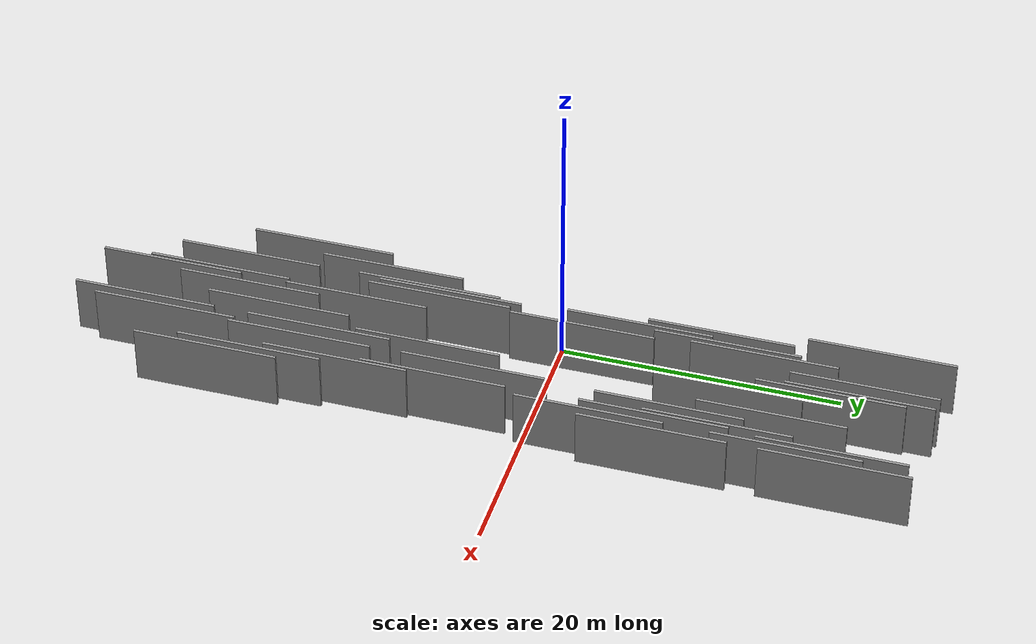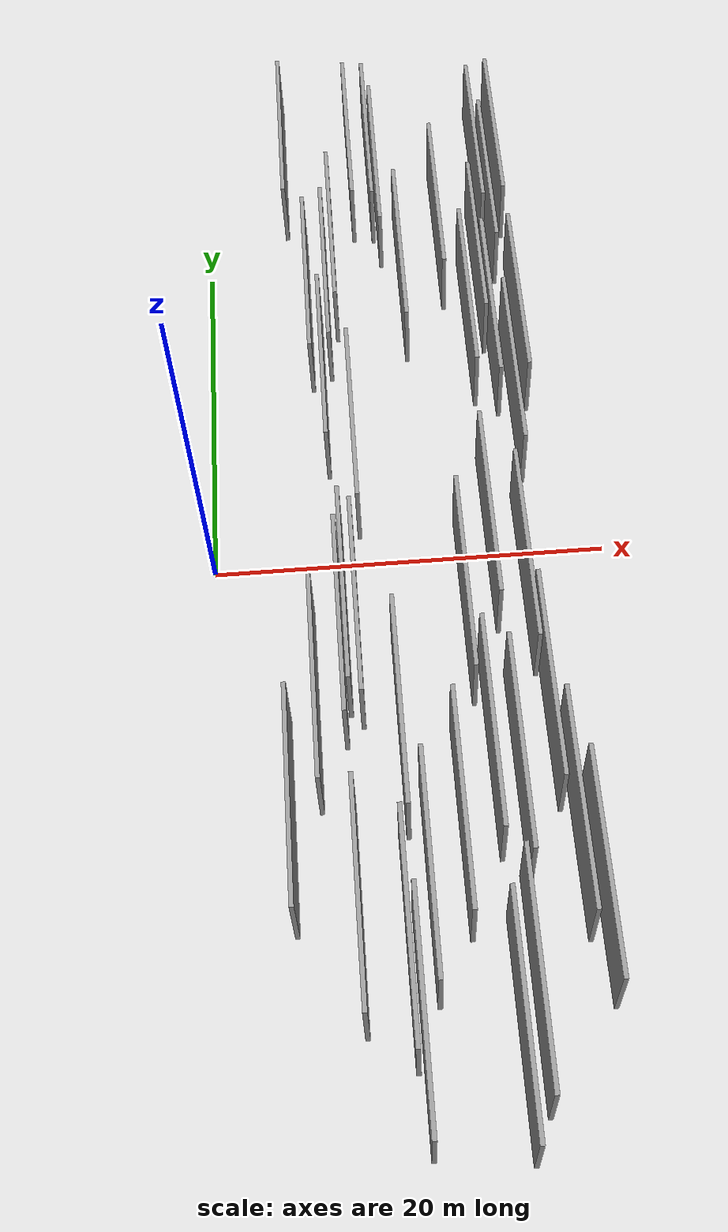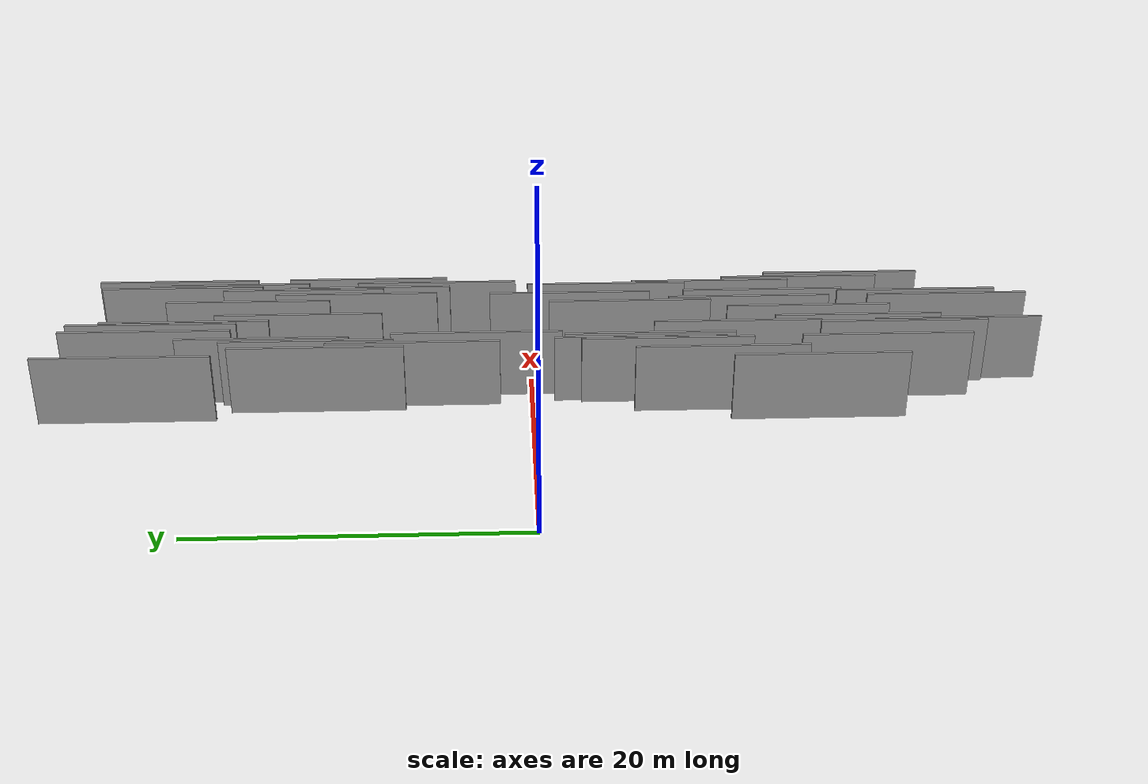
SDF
<sdf version="1.6">
 <world name="default">
  <scene>
   <sky><clouds><speed>12</speed></clouds></sky>
   <ambient>0.4 0.4 0.4 1</ambient>
   <background>0.7 0.7 0.7 1</background>
   <shadows>1</shadows>
  </scene>
  <gravity>0 0 -9.8066</gravity>
  <magnetic_field>6e-06 2.3e-05 -4.2e-05</magnetic_field>
  <physics default="0" name="default_physics" type="ode">
   <ode>
    <solver>
     <type>quick</type>
     <iters>10</iters>
     <sor>1.0</sor>
     <use_dynamic_moi_rescaling>0</use_dynamic_moi_rescaling>
    </solver>
    <constraints>
     <cfm>0</cfm>
     <erp>0.2</erp>
     <contact_max_correcting_vel>100</contact_max_correcting_vel>
     <contact_surface_layer>0.001</contact_surface_layer>
    </constraints>
   </ode>
   <max_step_size>0.004</max_step_size>
   <real_time_factor>1</real_time_factor>
   <real_time_update_rate>250</real_time_update_rate>
  </physics>
  <light name="sun" type="directional">
   <pose>0 0 10 0 0 0</pose>
   <diffuse>0.8 0.8 0.8 1</diffuse>
   <specular>0.2 0.2 0.2 1</specular>
   <attenuation>
    <range>1000</range>
    <constant>0.9</constant>
    <linear>0.01</linear>
    <quadratic>0.001</quadratic>
   </attenuation>
   <direction>-0.5 0.1 -0.9</direction>
  </light>
  <model name="grey_wall_1">
   <static>1</static>
   <pose>11.0375 -16.7799 5.0 0.000000 0.000000 1.570796</pose>
   <link name="link">
    <pose>0 0 2.00 0 0 0</pose>
    <collision name="collision"><geometry><box><size>10.00 0.2 4.00</size></box></geometry></collision>
    <visual name="visual">
     <cast_shadows>0</cast_shadows>
     <geometry><box><size>10.00 0.2 4.00</size></box></geometry>
     <material>
      <script>
       <uri>model://grey_wall/materials/scripts</uri>
       <uri>model://grey_wall/materials/textures</uri>
       <name>vrc/grey_wall</name>
      </script>
     </material>
    </visual>
   </link>
  </model>
  <model name="grey_wall_2">
   <static>1</static>
   <pose>8.7312 -12.0784 5.0 0.000000 0.000000 1.570796</pose>
   <link name="link">
    <pose>0 0 2.00 0 0 0</pose>
    <collision name="collision"><geometry><box><size>10.00 0.2 4.00</size></box></geometry></collision>
    <visual name="visual">
     <cast_shadows>0</cast_shadows>
     <geometry><box><size>10.00 0.2 4.00</size></box></geometry>
     <material>
      <script>
       <uri>model://grey_wall/materials/scripts</uri>
       <uri>model://grey_wall/materials/textures</uri>
       <name>vrc/grey_wall</name>
      </script>
     </material>
    </visual>
   </link>
  </model>
  <model name="grey_wall_3">
   <static>1</static>
   <pose>14.6772 14.4117 5.0 0.000000 0.000000 1.570796</pose>
   <link name="link">
    <pose>0 0 2.00 0 0 0</pose>
    <collision name="collision"><geometry><box><size>10.00 0.2 4.00</size></box></geometry></collision>
    <visual name="visual">
     <cast_shadows>0</cast_shadows>
     <geometry><box><size>10.00 0.2 4.00</size></box></geometry>
     <material>
      <script>
       <uri>model://grey_wall/materials/scripts</uri>
       <uri>model://grey_wall/materials/textures</uri>
       <name>vrc/grey_wall</name>
      </script>
     </material>
    </visual>
   </link>
  </model>
  <model name="grey_wall_4">
   <static>1</static>
   <pose>15.1227 -4.6517 5.0 0.000000 0.000000 1.570796</pose>
   <link name="link">
    <pose>0 0 2.00 0 0 0</pose>
    <collision name="collision"><geometry><box><size>10.00 0.2 4.00</size></box></geometry></collision>
    <visual name="visual">
     <cast_shadows>0</cast_shadows>
     <geometry><box><size>10.00 0.2 4.00</size></box></geometry>
     <material>
      <script>
       <uri>model://grey_wall/materials/scripts</uri>
       <uri>model://grey_wall/materials/textures</uri>
       <name>vrc/grey_wall</name>
      </script>
     </material>
    </visual>
   </link>
  </model>
  <model name="grey_wall_5">
   <static>1</static>
   <pose>13.3952 -24.0836 5.0 0.000000 0.000000 1.570796</pose>
   <link name="link">
    <pose>0 0 2.00 0 0 0</pose>
    <collision name="collision"><geometry><box><size>10.00 0.2 4.00</size></box></geometry></collision>
    <visual name="visual">
     <cast_shadows>0</cast_shadows>
     <geometry><box><size>10.00 0.2 4.00</size></box></geometry>
     <material>
      <script>
       <uri>model://grey_wall/materials/scripts</uri>
       <uri>model://grey_wall/materials/textures</uri>
       <name>vrc/grey_wall</name>
      </script>
     </material>
    </visual>
   </link>
  </model>
  <model name="grey_wall_6">
   <static>1</static>
   <pose>16.4184 10.4827 5.0 0.000000 0.000000 1.570796</pose>
   <link name="link">
    <pose>0 0 2.00 0 0 0</pose>
    <collision name="collision"><geometry><box><size>10.00 0.2 4.00</size></box></geometry></collision>
    <visual name="visual">
     <cast_shadows>0</cast_shadows>
     <geometry><box><size>10.00 0.2 4.00</size></box></geometry>
     <material>
      <script>
       <uri>model://grey_wall/materials/scripts</uri>
       <uri>model://grey_wall/materials/textures</uri>
       <name>vrc/grey_wall</name>
      </script>
     </material>
    </visual>
   </link>
  </model>
  <model name="grey_wall_7">
   <static>1</static>
   <pose>6.6404 13.1950 5.0 0.000000 0.000000 1.570796</pose>
   <link name="link">
    <pose>0 0 2.00 0 0 0</pose>
    <collision name="collision"><geometry><box><size>10.00 0.2 4.00</size></box></geometry></collision>
    <visual name="visual">
     <cast_shadows>0</cast_shadows>
     <geometry><box><size>10.00 0.2 4.00</size></box></geometry>
     <material>
      <script>
       <uri>model://grey_wall/materials/scripts</uri>
       <uri>model://grey_wall/materials/textures</uri>
       <name>vrc/grey_wall</name>
      </script>
     </material>
    </visual>
   </link>
  </model>
  <model name="grey_wall_8">
   <static>1</static>
   <pose>9.7007 20.7970 5.0 0.000000 0.000000 1.570796</pose>
   <link name="link">
    <pose>0 0 2.00 0 0 0</pose>
    <collision name="collision"><geometry><box><size>10.00 0.2 4.00</size></box></geometry></collision>
    <visual name="visual">
     <cast_shadows>0</cast_shadows>
     <geometry><box><size>10.00 0.2 4.00</size></box></geometry>
     <material>
      <script>
       <uri>model://grey_wall/materials/scripts</uri>
       <uri>model://grey_wall/materials/textures</uri>
       <name>vrc/grey_wall</name>
      </script>
     </material>
    </visual>
   </link>
  </model>
  <model name="grey_wall_9">
   <static>1</static>
   <pose>7.5157 3.4173 5.0 0.000000 0.000000 1.570796</pose>
   <link name="link">
    <pose>0 0 2.00 0 0 0</pose>
    <collision name="collision"><geometry><box><size>10.00 0.2 4.00</size></box></geometry></collision>
    <visual name="visual">
     <cast_shadows>0</cast_shadows>
     <geometry><box><size>10.00 0.2 4.00</size></box></geometry>
     <material>
      <script>
       <uri>model://grey_wall/materials/scripts</uri>
       <uri>model://grey_wall/materials/textures</uri>
       <name>vrc/grey_wall</name>
      </script>
     </material>
    </visual>
   </link>
  </model>
  <model name="grey_wall_10">
   <static>1</static>
   <pose>6.4419 -20.4686 5.0 0.000000 0.000000 1.570796</pose>
   <link name="link">
    <pose>0 0 2.00 0 0 0</pose>
    <collision name="collision"><geometry><box><size>10.00 0.2 4.00</size></box></geometry></collision>
    <visual name="visual">
     <cast_shadows>0</cast_shadows>
     <geometry><box><size>10.00 0.2 4.00</size></box></geometry>
     <material>
      <script>
       <uri>model://grey_wall/materials/scripts</uri>
       <uri>model://grey_wall/materials/textures</uri>
       <name>vrc/grey_wall</name>
      </script>
     </material>
    </visual>
   </link>
  </model>
  <model name="grey_wall_11">
   <static>1</static>
   <pose>6.3266 -7.6343 5.0 0.000000 0.000000 1.570796</pose>
   <link name="link">
    <pose>0 0 2.00 0 0 0</pose>
    <collision name="collision"><geometry><box><size>10.00 0.2 4.00</size></box></geometry></collision>
    <visual name="visual">
     <cast_shadows>0</cast_shadows>
     <geometry><box><size>10.00 0.2 4.00</size></box></geometry>
     <material>
      <script>
       <uri>model://grey_wall/materials/scripts</uri>
       <uri>model://grey_wall/materials/textures</uri>
       <name>vrc/grey_wall</name>
      </script>
     </material>
    </visual>
   </link>
  </model>
  <model name="grey_wall_12">
   <static>1</static>
   <pose>12.6332 -25.8149 5.0 0.000000 0.000000 1.570796</pose>
   <link name="link">
    <pose>0 0 2.00 0 0 0</pose>
    <collision name="collision"><geometry><box><size>10.00 0.2 4.00</size></box></geometry></collision>
    <visual name="visual">
     <cast_shadows>0</cast_shadows>
     <geometry><box><size>10.00 0.2 4.00</size></box></geometry>
     <material>
      <script>
       <uri>model://grey_wall/materials/scripts</uri>
       <uri>model://grey_wall/materials/textures</uri>
       <name>vrc/grey_wall</name>
      </script>
     </material>
    </visual>
   </link>
  </model>
  <model name="grey_wall_13">
   <static>1</static>
   <pose>12.6423 -13.3942 5.0 0.000000 0.000000 1.570796</pose>
   <link name="link">
    <pose>0 0 2.00 0 0 0</pose>
    <collision name="collision"><geometry><box><size>10.00 0.2 4.00</size></box></geometry></collision>
    <visual name="visual">
     <cast_shadows>0</cast_shadows>
     <geometry><box><size>10.00 0.2 4.00</size></box></geometry>
     <material>
      <script>
       <uri>model://grey_wall/materials/scripts</uri>
       <uri>model://grey_wall/materials/textures</uri>
       <name>vrc/grey_wall</name>
      </script>
     </material>
    </visual>
   </link>
  </model>
  <model name="grey_wall_14">
   <static>1</static>
   <pose>9.4470 -19.4507 5.0 0.000000 0.000000 1.570796</pose>
   <link name="link">
    <pose>0 0 2.00 0 0 0</pose>
    <collision name="collision"><geometry><box><size>10.00 0.2 4.00</size></box></geometry></collision>
    <visual name="visual">
     <cast_shadows>0</cast_shadows>
     <geometry><box><size>10.00 0.2 4.00</size></box></geometry>
     <material>
      <script>
       <uri>model://grey_wall/materials/scripts</uri>
       <uri>model://grey_wall/materials/textures</uri>
       <name>vrc/grey_wall</name>
      </script>
     </material>
    </visual>
   </link>
  </model>
  <model name="grey_wall_15">
   <static>1</static>
   <pose>6.5810 -6.0678 5.0 0.000000 0.000000 1.570796</pose>
   <link name="link">
    <pose>0 0 2.00 0 0 0</pose>
    <collision name="collision"><geometry><box><size>10.00 0.2 4.00</size></box></geometry></collision>
    <visual name="visual">
     <cast_shadows>0</cast_shadows>
     <geometry><box><size>10.00 0.2 4.00</size></box></geometry>
     <material>
      <script>
       <uri>model://grey_wall/materials/scripts</uri>
       <uri>model://grey_wall/materials/textures</uri>
       <name>vrc/grey_wall</name>
      </script>
     </material>
    </visual>
   </link>
  </model>
  <model name="grey_wall_16">
   <static>1</static>
   <pose>4.6924 23.2341 5.0 0.000000 0.000000 1.570796</pose>
   <link name="link">
    <pose>0 0 2.00 0 0 0</pose>
    <collision name="collision"><geometry><box><size>10.00 0.2 4.00</size></box></geometry></collision>
    <visual name="visual">
     <cast_shadows>0</cast_shadows>
     <geometry><box><size>10.00 0.2 4.00</size></box></geometry>
     <material>
      <script>
       <uri>model://grey_wall/materials/scripts</uri>
       <uri>model://grey_wall/materials/textures</uri>
       <name>vrc/grey_wall</name>
      </script>
     </material>
    </visual>
   </link>
  </model>
  <model name="grey_wall_17">
   <static>1</static>
   <pose>9.3925 22.6622 5.0 0.000000 0.000000 1.570796</pose>
   <link name="link">
    <pose>0 0 2.00 0 0 0</pose>
    <collision name="collision"><geometry><box><size>10.00 0.2 4.00</size></box></geometry></collision>
    <visual name="visual">
     <cast_shadows>0</cast_shadows>
     <geometry><box><size>10.00 0.2 4.00</size></box></geometry>
     <material>
      <script>
       <uri>model://grey_wall/materials/scripts</uri>
       <uri>model://grey_wall/materials/textures</uri>
       <name>vrc/grey_wall</name>
      </script>
     </material>
    </visual>
   </link>
  </model>
  <model name="grey_wall_18">
   <static>1</static>
   <pose>7.0866 15.8026 5.0 0.000000 0.000000 1.570796</pose>
   <link name="link">
    <pose>0 0 2.00 0 0 0</pose>
    <collision name="collision"><geometry><box><size>10.00 0.2 4.00</size></box></geometry></collision>
    <visual name="visual">
     <cast_shadows>0</cast_shadows>
     <geometry><box><size>10.00 0.2 4.00</size></box></geometry>
     <material>
      <script>
       <uri>model://grey_wall/materials/scripts</uri>
       <uri>model://grey_wall/materials/textures</uri>
       <name>vrc/grey_wall</name>
      </script>
     </material>
    </visual>
   </link>
  </model>
  <model name="grey_wall_19">
   <static>1</static>
   <pose>3.7827 -16.0695 5.0 0.000000 0.000000 1.570796</pose>
   <link name="link">
    <pose>0 0 2.00 0 0 0</pose>
    <collision name="collision"><geometry><box><size>10.00 0.2 4.00</size></box></geometry></collision>
    <visual name="visual">
     <cast_shadows>0</cast_shadows>
     <geometry><box><size>10.00 0.2 4.00</size></box></geometry>
     <material>
      <script>
       <uri>model://grey_wall/materials/scripts</uri>
       <uri>model://grey_wall/materials/textures</uri>
       <name>vrc/grey_wall</name>
      </script>
     </material>
    </visual>
   </link>
  </model>
  <model name="grey_wall_20">
   <static>1</static>
   <pose>13.8716 11.0214 5.0 0.000000 0.000000 1.570796</pose>
   <link name="link">
    <pose>0 0 2.00 0 0 0</pose>
    <collision name="collision"><geometry><box><size>10.00 0.2 4.00</size></box></geometry></collision>
    <visual name="visual">
     <cast_shadows>0</cast_shadows>
     <geometry><box><size>10.00 0.2 4.00</size></box></geometry>
     <material>
      <script>
       <uri>model://grey_wall/materials/scripts</uri>
       <uri>model://grey_wall/materials/textures</uri>
       <name>vrc/grey_wall</name>
      </script>
     </material>
    </visual>
   </link>
  </model>
  <model name="grey_wall_21">
   <static>1</static>
   <pose>15.7104 6.0974 5.0 0.000000 0.000000 1.570796</pose>
   <link name="link">
    <pose>0 0 2.00 0 0 0</pose>
    <collision name="collision"><geometry><box><size>10.00 0.2 4.00</size></box></geometry></collision>
    <visual name="visual">
     <cast_shadows>0</cast_shadows>
     <geometry><box><size>10.00 0.2 4.00</size></box></geometry>
     <material>
      <script>
       <uri>model://grey_wall/materials/scripts</uri>
       <uri>model://grey_wall/materials/textures</uri>
       <name>vrc/grey_wall</name>
      </script>
     </material>
    </visual>
   </link>
  </model>
  <model name="grey_wall_22">
   <static>1</static>
   <pose>10.6238 14.1746 5.0 0.000000 0.000000 1.570796</pose>
   <link name="link">
    <pose>0 0 2.00 0 0 0</pose>
    <collision name="collision"><geometry><box><size>10.00 0.2 4.00</size></box></geometry></collision>
    <visual name="visual">
     <cast_shadows>0</cast_shadows>
     <geometry><box><size>10.00 0.2 4.00</size></box></geometry>
     <material>
      <script>
       <uri>model://grey_wall/materials/scripts</uri>
       <uri>model://grey_wall/materials/textures</uri>
       <name>vrc/grey_wall</name>
      </script>
     </material>
    </visual>
   </link>
  </model>
  <model name="grey_wall_23">
   <static>1</static>
   <pose>15.2816 22.0513 5.0 0.000000 0.000000 1.570796</pose>
   <link name="link">
    <pose>0 0 2.00 0 0 0</pose>
    <collision name="collision"><geometry><box><size>10.00 0.2 4.00</size></box></geometry></collision>
    <visual name="visual">
     <cast_shadows>0</cast_shadows>
     <geometry><box><size>10.00 0.2 4.00</size></box></geometry>
     <material>
      <script>
       <uri>model://grey_wall/materials/scripts</uri>
       <uri>model://grey_wall/materials/textures</uri>
       <name>vrc/grey_wall</name>
      </script>
     </material>
    </visual>
   </link>
  </model>
  <model name="grey_wall_24">
   <static>1</static>
   <pose>14.9816 10.2617 5.0 0.000000 0.000000 1.570796</pose>
   <link name="link">
    <pose>0 0 2.00 0 0 0</pose>
    <collision name="collision"><geometry><box><size>10.00 0.2 4.00</size></box></geometry></collision>
    <visual name="visual">
     <cast_shadows>0</cast_shadows>
     <geometry><box><size>10.00 0.2 4.00</size></box></geometry>
     <material>
      <script>
       <uri>model://grey_wall/materials/scripts</uri>
       <uri>model://grey_wall/materials/textures</uri>
       <name>vrc/grey_wall</name>
      </script>
     </material>
    </visual>
   </link>
  </model>
  <model name="grey_wall_25">
   <static>1</static>
   <pose>8.7066 -25.3201 5.0 0.000000 0.000000 1.570796</pose>
   <link name="link">
    <pose>0 0 2.00 0 0 0</pose>
    <collision name="collision"><geometry><box><size>10.00 0.2 4.00</size></box></geometry></collision>
    <visual name="visual">
     <cast_shadows>0</cast_shadows>
     <geometry><box><size>10.00 0.2 4.00</size></box></geometry>
     <material>
      <script>
       <uri>model://grey_wall/materials/scripts</uri>
       <uri>model://grey_wall/materials/textures</uri>
       <name>vrc/grey_wall</name>
      </script>
     </material>
    </visual>
   </link>
  </model>
  <model name="grey_wall_26">
   <static>1</static>
   <pose>8.3438 22.7989 5.0 0.000000 0.000000 1.570796</pose>
   <link name="link">
    <pose>0 0 2.00 0 0 0</pose>
    <collision name="collision"><geometry><box><size>10.00 0.2 4.00</size></box></geometry></collision>
    <visual name="visual">
     <cast_shadows>0</cast_shadows>
     <geometry><box><size>10.00 0.2 4.00</size></box></geometry>
     <material>
      <script>
       <uri>model://grey_wall/materials/scripts</uri>
       <uri>model://grey_wall/materials/textures</uri>
       <name>vrc/grey_wall</name>
      </script>
     </material>
    </visual>
   </link>
  </model>
  <model name="grey_wall_27">
   <static>1</static>
   <pose>5.0604 -10.6449 5.0 0.000000 0.000000 1.570796</pose>
   <link name="link">
    <pose>0 0 2.00 0 0 0</pose>
    <collision name="collision"><geometry><box><size>10.00 0.2 4.00</size></box></geometry></collision>
    <visual name="visual">
     <cast_shadows>0</cast_shadows>
     <geometry><box><size>10.00 0.2 4.00</size></box></geometry>
     <material>
      <script>
       <uri>model://grey_wall/materials/scripts</uri>
       <uri>model://grey_wall/materials/textures</uri>
       <name>vrc/grey_wall</name>
      </script>
     </material>
    </visual>
   </link>
  </model>
  <model name="grey_wall_28">
   <static>1</static>
   <pose>13.7444 -14.4174 5.0 0.000000 0.000000 1.570796</pose>
   <link name="link">
    <pose>0 0 2.00 0 0 0</pose>
    <collision name="collision"><geometry><box><size>10.00 0.2 4.00</size></box></geometry></collision>
    <visual name="visual">
     <cast_shadows>0</cast_shadows>
     <geometry><box><size>10.00 0.2 4.00</size></box></geometry>
     <material>
      <script>
       <uri>model://grey_wall/materials/scripts</uri>
       <uri>model://grey_wall/materials/textures</uri>
       <name>vrc/grey_wall</name>
      </script>
     </material>
    </visual>
   </link>
  </model>
  <model name="grey_wall_29">
   <static>1</static>
   <pose>15.4060 -11.3376 5.0 0.000000 0.000000 1.570796</pose>
   <link name="link">
    <pose>0 0 2.00 0 0 0</pose>
    <collision name="collision"><geometry><box><size>10.00 0.2 4.00</size></box></geometry></collision>
    <visual name="visual">
     <cast_shadows>0</cast_shadows>
     <geometry><box><size>10.00 0.2 4.00</size></box></geometry>
     <material>
      <script>
       <uri>model://grey_wall/materials/scripts</uri>
       <uri>model://grey_wall/materials/textures</uri>
       <name>vrc/grey_wall</name>
      </script>
     </material>
    </visual>
   </link>
  </model>
  <model name="grey_wall_30">
   <static>1</static>
   <pose>5.6695 12.5507 5.0 0.000000 0.000000 1.570796</pose>
   <link name="link">
    <pose>0 0 2.00 0 0 0</pose>
    <collision name="collision"><geometry><box><size>10.00 0.2 4.00</size></box></geometry></collision>
    <visual name="visual">
     <cast_shadows>0</cast_shadows>
     <geometry><box><size>10.00 0.2 4.00</size></box></geometry>
     <material>
      <script>
       <uri>model://grey_wall/materials/scripts</uri>
       <uri>model://grey_wall/materials/textures</uri>
       <name>vrc/grey_wall</name>
      </script>
     </material>
    </visual>
   </link>
  </model>
  <model name="grey_wall_31">
   <static>1</static>
   <pose>16.3953 22.4822 5.0 0.000000 0.000000 1.570796</pose>
   <link name="link">
    <pose>0 0 2.00 0 0 0</pose>
    <collision name="collision"><geometry><box><size>10.00 0.2 4.00</size></box></geometry></collision>
    <visual name="visual">
     <cast_shadows>0</cast_shadows>
     <geometry><box><size>10.00 0.2 4.00</size></box></geometry>
     <material>
      <script>
       <uri>model://grey_wall/materials/scripts</uri>
       <uri>model://grey_wall/materials/textures</uri>
       <name>vrc/grey_wall</name>
      </script>
     </material>
    </visual>
   </link>
  </model>
  <model name="grey_wall_32">
   <static>1</static>
   <pose>12.8082 17.5544 5.0 0.000000 0.000000 1.570796</pose>
   <link name="link">
    <pose>0 0 2.00 0 0 0</pose>
    <collision name="collision"><geometry><box><size>10.00 0.2 4.00</size></box></geometry></collision>
    <visual name="visual">
     <cast_shadows>0</cast_shadows>
     <geometry><box><size>10.00 0.2 4.00</size></box></geometry>
     <material>
      <script>
       <uri>model://grey_wall/materials/scripts</uri>
       <uri>model://grey_wall/materials/textures</uri>
       <name>vrc/grey_wall</name>
      </script>
     </material>
    </visual>
   </link>
  </model>
  <model name="grey_wall_33">
   <static>1</static>
   <pose>6.2263 7.0826 5.0 0.000000 0.000000 1.570796</pose>
   <link name="link">
    <pose>0 0 2.00 0 0 0</pose>
    <collision name="collision"><geometry><box><size>10.00 0.2 4.00</size></box></geometry></collision>
    <visual name="visual">
     <cast_shadows>0</cast_shadows>
     <geometry><box><size>10.00 0.2 4.00</size></box></geometry>
     <material>
      <script>
       <uri>model://grey_wall/materials/scripts</uri>
       <uri>model://grey_wall/materials/textures</uri>
       <name>vrc/grey_wall</name>
      </script>
     </material>
    </visual>
   </link>
  </model>
  <model name="grey_wall_34">
   <static>1</static>
   <pose>15.7094 19.1650 5.0 0.000000 0.000000 1.570796</pose>
   <link name="link">
    <pose>0 0 2.00 0 0 0</pose>
    <collision name="collision"><geometry><box><size>10.00 0.2 4.00</size></box></geometry></collision>
    <visual name="visual">
     <cast_shadows>0</cast_shadows>
     <geometry><box><size>10.00 0.2 4.00</size></box></geometry>
     <material>
      <script>
       <uri>model://grey_wall/materials/scripts</uri>
       <uri>model://grey_wall/materials/textures</uri>
       <name>vrc/grey_wall</name>
      </script>
     </material>
    </visual>
   </link>
  </model>
  <model name="grey_wall_35">
   <static>1</static>
   <pose>16.6005 -19.9999 5.0 0.000000 0.000000 1.570796</pose>
   <link name="link">
    <pose>0 0 2.00 0 0 0</pose>
    <collision name="collision"><geometry><box><size>10.00 0.2 4.00</size></box></geometry></collision>
    <visual name="visual">
     <cast_shadows>0</cast_shadows>
     <geometry><box><size>10.00 0.2 4.00</size></box></geometry>
     <material>
      <script>
       <uri>model://grey_wall/materials/scripts</uri>
       <uri>model://grey_wall/materials/textures</uri>
       <name>vrc/grey_wall</name>
      </script>
     </material>
    </visual>
   </link>
  </model>
  <model name="grey_wall_36">
   <static>1</static>
   <pose>13.6437 -2.2726 5.0 0.000000 0.000000 1.570796</pose>
   <link name="link">
    <pose>0 0 2.00 0 0 0</pose>
    <collision name="collision"><geometry><box><size>10.00 0.2 4.00</size></box></geometry></collision>
    <visual name="visual">
     <cast_shadows>0</cast_shadows>
     <geometry><box><size>10.00 0.2 4.00</size></box></geometry>
     <material>
      <script>
       <uri>model://grey_wall/materials/scripts</uri>
       <uri>model://grey_wall/materials/textures</uri>
       <name>vrc/grey_wall</name>
      </script>
     </material>
    </visual>
   </link>
  </model>
  <model name="grey_wall_37">
   <static>1</static>
   <pose>8.3772 -21.9840 5.0 0.000000 0.000000 1.570796</pose>
   <link name="link">
    <pose>0 0 2.00 0 0 0</pose>
    <collision name="collision"><geometry><box><size>10.00 0.2 4.00</size></box></geometry></collision>
    <visual name="visual">
     <cast_shadows>0</cast_shadows>
     <geometry><box><size>10.00 0.2 4.00</size></box></geometry>
     <material>
      <script>
       <uri>model://grey_wall/materials/scripts</uri>
       <uri>model://grey_wall/materials/textures</uri>
       <name>vrc/grey_wall</name>
      </script>
     </material>
    </visual>
   </link>
  </model>
  <model name="grey_wall_38">
   <static>1</static>
   <pose>7.1103 -6.6966 5.0 0.000000 0.000000 1.570796</pose>
   <link name="link">
    <pose>0 0 2.00 0 0 0</pose>
    <collision name="collision"><geometry><box><size>10.00 0.2 4.00</size></box></geometry></collision>
    <visual name="visual">
     <cast_shadows>0</cast_shadows>
     <geometry><box><size>10.00 0.2 4.00</size></box></geometry>
     <material>
      <script>
       <uri>model://grey_wall/materials/scripts</uri>
       <uri>model://grey_wall/materials/textures</uri>
       <name>vrc/grey_wall</name>
      </script>
     </material>
    </visual>
   </link>
  </model>
  <model name="grey_wall_39">
   <static>1</static>
   <pose>15.9437 -17.1658 5.0 0.000000 0.000000 1.570796</pose>
   <link name="link">
    <pose>0 0 2.00 0 0 0</pose>
    <collision name="collision"><geometry><box><size>10.00 0.2 4.00</size></box></geometry></collision>
    <visual name="visual">
     <cast_shadows>0</cast_shadows>
     <geometry><box><size>10.00 0.2 4.00</size></box></geometry>
     <material>
      <script>
       <uri>model://grey_wall/materials/scripts</uri>
       <uri>model://grey_wall/materials/textures</uri>
       <name>vrc/grey_wall</name>
      </script>
     </material>
    </visual>
   </link>
  </model>
  <model name="grey_wall_40">
   <static>1</static>
   <pose>12.1707 -5.9232 5.0 0.000000 0.000000 1.570796</pose>
   <link name="link">
    <pose>0 0 2.00 0 0 0</pose>
    <collision name="collision"><geometry><box><size>10.00 0.2 4.00</size></box></geometry></collision>
    <visual name="visual">
     <cast_shadows>0</cast_shadows>
     <geometry><box><size>10.00 0.2 4.00</size></box></geometry>
     <material>
      <script>
       <uri>model://grey_wall/materials/scripts</uri>
       <uri>model://grey_wall/materials/textures</uri>
       <name>vrc/grey_wall</name>
      </script>
     </material>
    </visual>
   </link>
  </model>
 </world>
</sdf>
